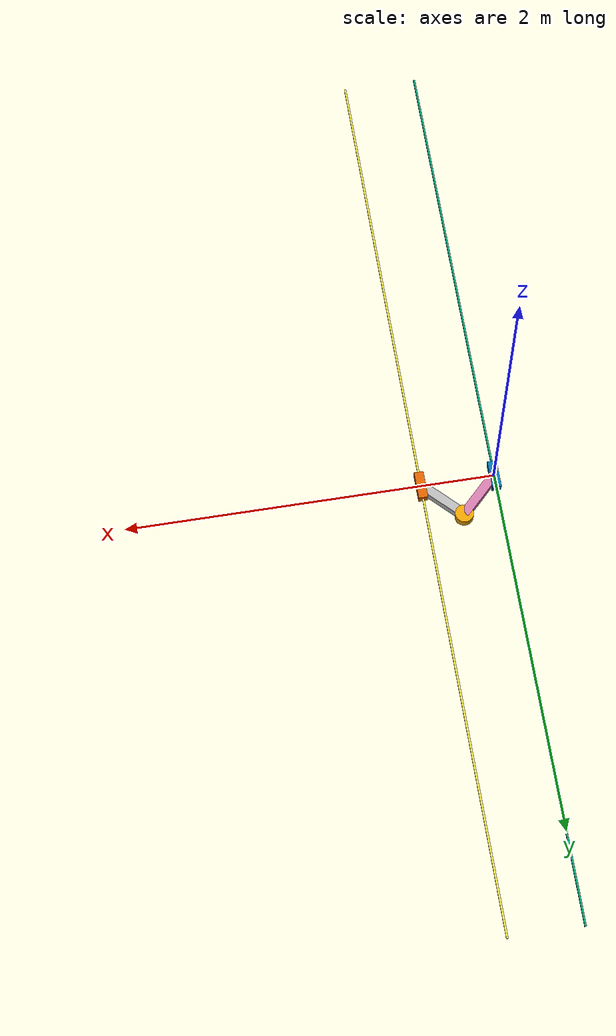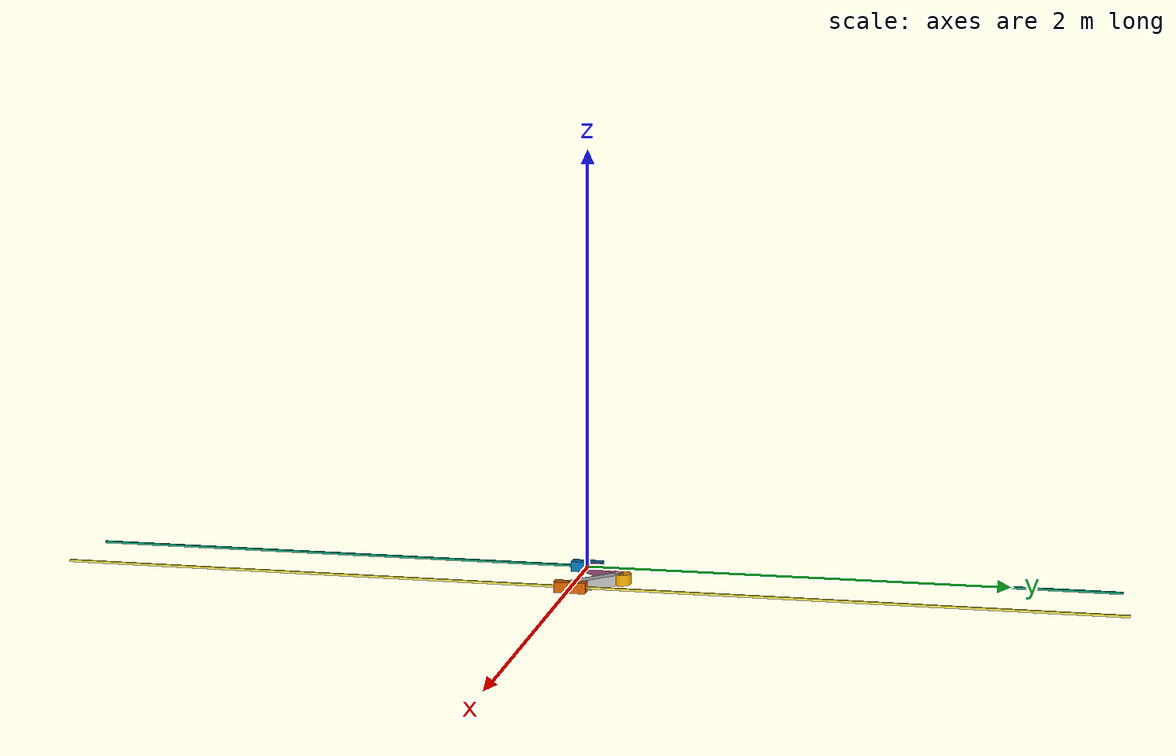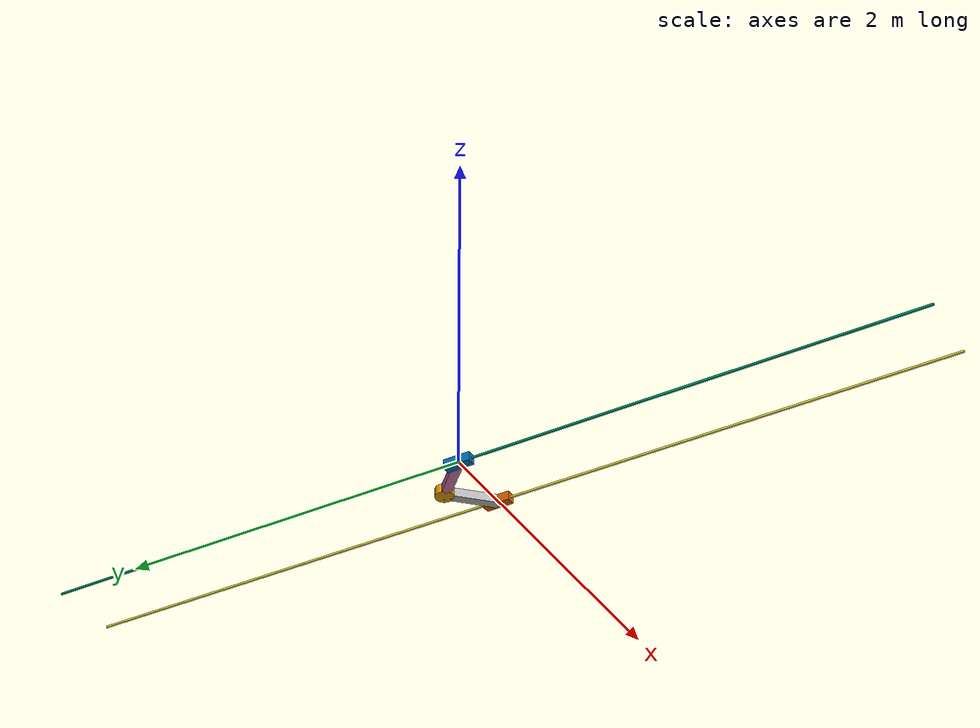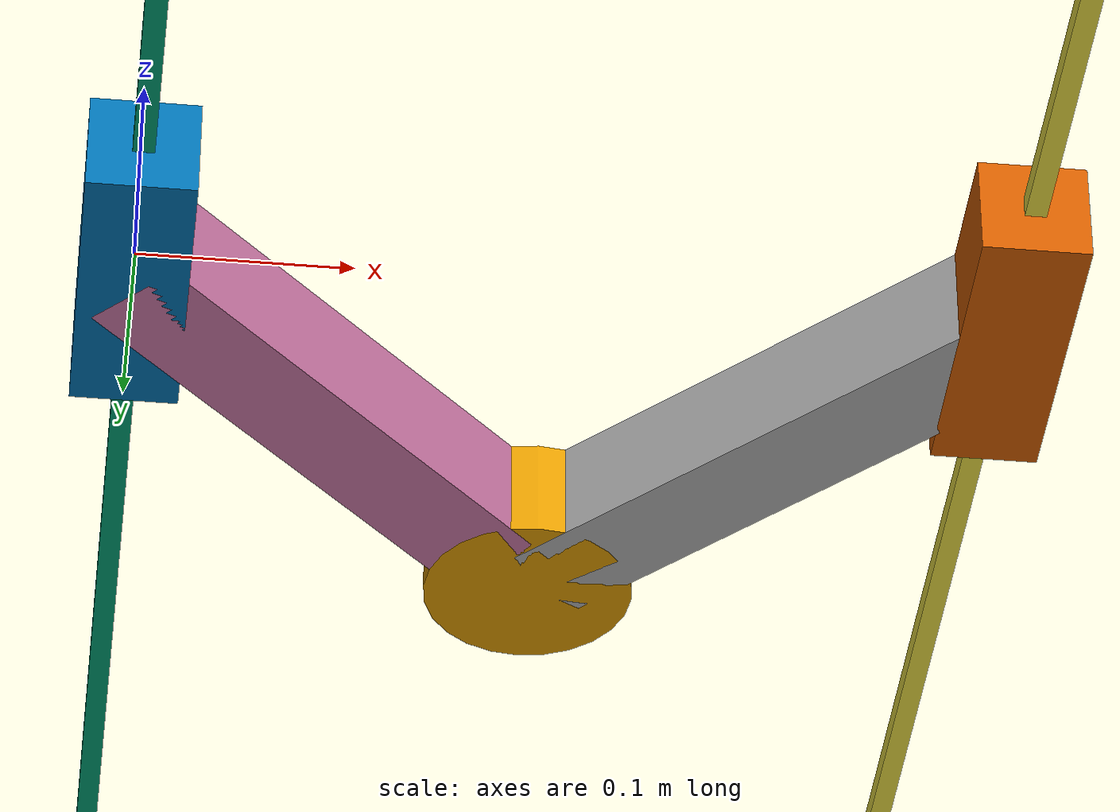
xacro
<?xml version="1.0"?>
<robot xmlns:xacro="http://www.ros.org/wiki/xacro" name="biglide">

  <xacro:property name="mass" value="1.0" />

  <xacro:macro name="standard_inertia">
    <inertial>
      <mass value="${mass}" />
      <inertia ixx="1e-5" ixy="0.0" ixz="0.0" iyy="1e-5" iyz="0.0" izz="1e-5" />
    </inertial>
  </xacro:macro>

  <link name="world"/>

  <link name="base">
    <xacro:standard_inertia />
  </link>

  <joint name="jointBase" type="fixed">
    <parent link="world" />
    <child link="base" />
    <origin xyz="0.2 0 0" rpy="0 0 0" />
  </joint>

  <link name="leftRail">
    <xacro:standard_inertia />
    <visual>
      <geometry><box size="0.01 5.0 0.01" /></geometry>
    </visual>
  </link>

  <joint name="jointLeftRail" type="fixed">
    <parent link="world" />
    <child link="leftRail" />
    <origin xyz="0 0 0" rpy="0 0 0" />
  </joint>

  <link name="rightRail">
    <xacro:standard_inertia />
    <visual>
      <geometry><box size="0.01 5.0 0.01" /></geometry>
    </visual>
  </link>

  <joint name="jointRightRail" type="fixed">
    <parent link="world" />
    <child link="rightRail" />
    <origin xyz="0.4 0 0" rpy="0 0 0" />
  </joint>

  <link name="leftFoot">
    <xacro:standard_inertia />
    <visual>
      <geometry><box size="0.05 0.15 0.05" /></geometry>
    </visual>
  </link>

  <joint name="A11" type="prismatic">
    <parent link="world" />
    <child link="leftFoot" />
    <origin xyz="0 0 0" rpy="0 0 0" />
    <axis xyz="0 1 0" />
    <limit lower="-2.5" upper="2.5" effort="1000" velocity="10" />
  </joint>

  <link name="rightFoot">
    <xacro:standard_inertia />
    <visual>
      <geometry><box size="0.05 0.15 0.05" /></geometry>
    </visual>
  </link>

  <joint name="A21" type="prismatic">
    <parent link="world" />
    <child link="rightFoot" />
    <origin xyz="0.4 0 0" rpy="0 0 0" />
    <axis xyz="0 1 0" />
    <limit lower="-2.5" upper="2.5" effort="1000" velocity="10" />
  </joint>

  <link name="leftArm">
    <inertial>
      <origin xyz="0.2828427 0.0 0" rpy="0 0 0"/>
      <mass value="${mass}"/>
      <inertia ixx="1e-5" ixy="0.0" ixz="0.0" iyy="1e-5" iyz="0.0" izz="1e-5"/>
    </inertial>
    <visual>
      <origin xyz="0.14142135623 0.0 0" rpy="0 0 0" />
      <geometry><box size="0.2828427 0.05 0.05" /></geometry>
    </visual>
  </link>

  <joint name="A12" type="revolute">
    <parent link="leftFoot" />
    <child link="leftArm" />
    <origin xyz="0 0 0" rpy="0 0 0.7853981" />
    <axis xyz="0 0 1" />
    <limit lower="-3.14" upper="3.14" effort="1000" velocity="10"/>
  </joint>

  <link name="rightArm">
    <inertial>
      <origin xyz="0.2828427 0.0 0" rpy="0 0 0"/>
      <mass value="${mass}"/>
      <inertia ixx="1e-5" ixy="0.0" ixz="0.0" iyy="1e-5" iyz="0.0" izz="1e-5"/>
    </inertial>
    <visual>
      <origin xyz="0.14142135623 0.0 0" rpy="0 0 0" />
      <geometry><box size="0.2828427 0.05 0.05" /></geometry>
    </visual>
  </link>

  <joint name="A22" type="revolute">
    <parent link="rightFoot" />
    <child link="rightArm" />
    <origin xyz="0 0 0" rpy="0 0 2.3561949" />
    <axis xyz="0 0 1" />
    <limit lower="-3.14" upper="3.14" effort="1000" velocity="10"/>
  </joint>

  <link name="endEffector">
    <xacro:standard_inertia />
    <visual>
      <geometry><cylinder radius="0.05" length="0.05" /></geometry>
    </visual>
  </link>

  <joint name="jointEndEffector" type="fixed">
    <parent link="leftArm" />
    <child link="endEffector" />
    <origin xyz="0.2828427 0 0" rpy="0 0 0" />
  </joint>

  </robot>
